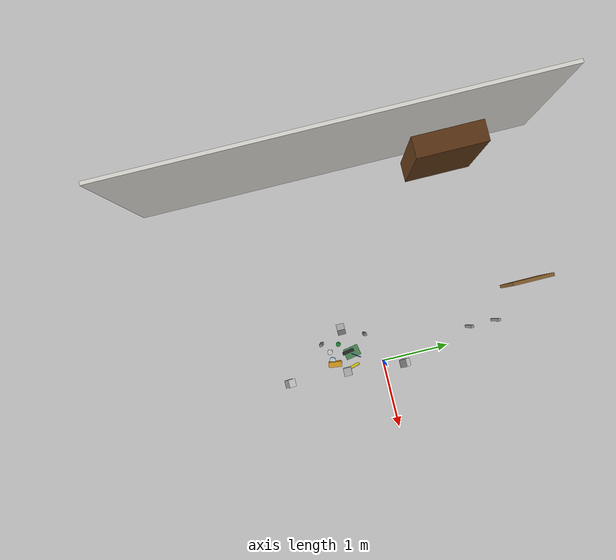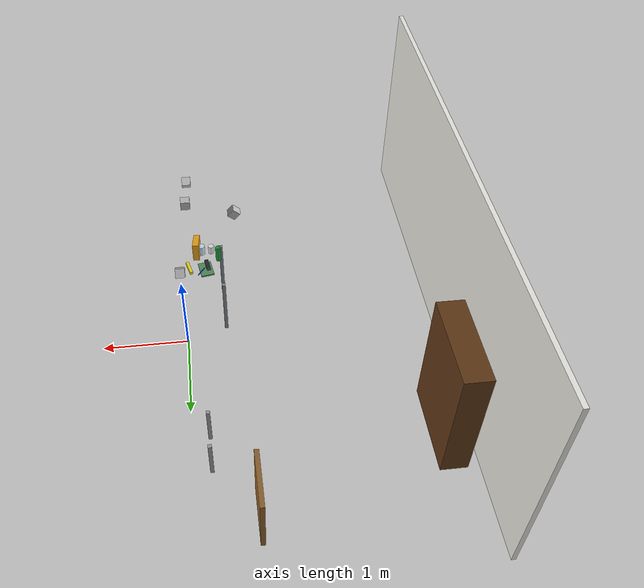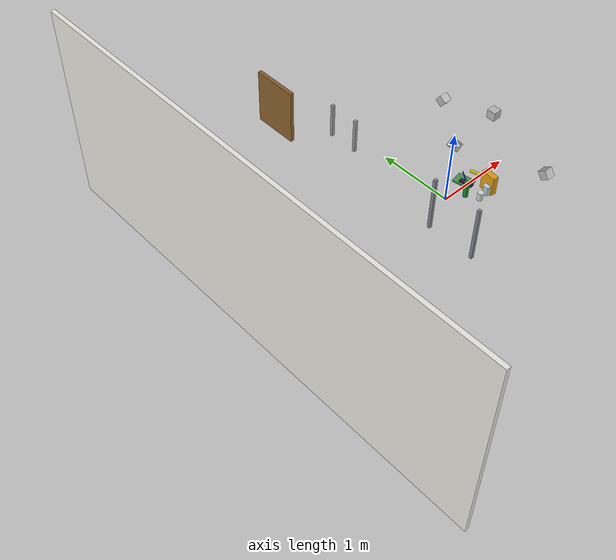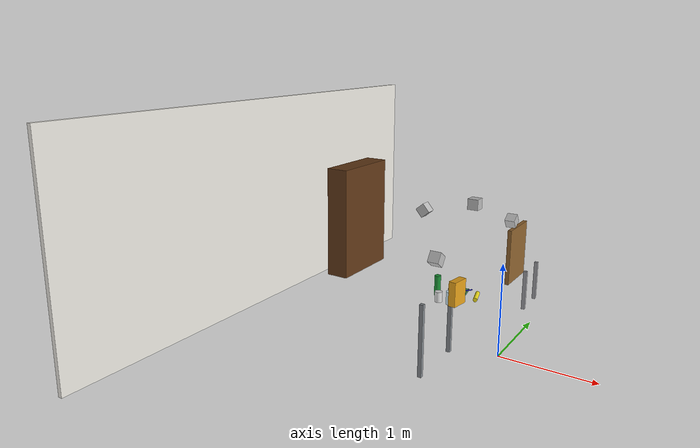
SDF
<sdf version="1.10">
 <world name="bps_room">
  <model name="wall_west">
   <static>true</static>
   <pose>-3 0 1.25 0 0 0</pose>
   <link name="link">
    <collision name="collision">
     <geometry><box><size>0.050000000000000003 6 2.5</size></box></geometry>
    </collision>
    <visual name="visual">
     <geometry><box><size>0.050000000000000003 6 2.5</size></box></geometry>
     <material>
      <ambient>0.930000007 0.920000017 0.889999986 1</ambient>
      <diffuse>0.930000007 0.920000017 0.889999986 1</diffuse>
     </material>
    </visual>
    <inertial>
     <mass>1</mass>
     <inertia><ixx>1</ixx><ixy>0</ixy><ixz>0</ixz><iyy>1</iyy><iyz>0</iyz><izz>1</izz></inertia>
    </inertial>
   </link>
  </model>
  <model name="bookshelf_body">
   <static>true</static>
   <pose>-2.7000000000000002 1.5 0.75 0 0 0</pose>
   <link name="link">
    <collision name="collision"><geometry><box><size>0.29999999999999999 1 1.5</size></box></geometry></collision>
    <visual name="visual">
     <geometry><box><size>0.29999999999999999 1 1.5</size></box></geometry>
     <material>
      <ambient>0.379999995 0.219999999 0.0900000036 1</ambient>
      <diffuse>0.379999995 0.219999999 0.0900000036 1</diffuse>
     </material>
    </visual>
    <inertial>
     <mass>1</mass>
     <inertia><ixx>1</ixx><ixy>0</ixy><ixz>0</ixz><iyy>1</iyy><iyz>0</iyz><izz>1</izz></inertia>
    </inertial>
   </link>
  </model>
  <model name="shelf_1">
   <static>true</static>
   <pose>-2.7000000000000002 1.5 0.40000000000000002 0 0 0</pose>
   <link name="link">
    <collision name="collision">
     <geometry><box><size>0.28000000000000003 0.94999999999999996 0.02</size></box></geometry>
    </collision>
    <visual name="visual">
     <geometry><box><size>0.28000000000000003 0.94999999999999996 0.02</size></box></geometry>
     <material>
      <ambient>0.5 0.319999993 0.140000001 1</ambient>
      <diffuse>0.5 0.319999993 0.140000001 1</diffuse>
     </material>
    </visual>
    <inertial>
     <mass>1</mass>
     <inertia><ixx>1</ixx><ixy>0</ixy><ixz>0</ixz><iyy>1</iyy><iyz>0</iyz><izz>1</izz></inertia>
    </inertial>
   </link>
  </model>
  <model name="shelf_2">
   <static>true</static>
   <pose>-2.7000000000000002 1.5 0.84999999999999998 0 0 0</pose>
   <link name="link">
    <collision name="collision">
     <geometry><box><size>0.28000000000000003 0.94999999999999996 0.02</size></box></geometry>
    </collision>
    <visual name="visual">
     <geometry><box><size>0.28000000000000003 0.94999999999999996 0.02</size></box></geometry>
     <material>
      <ambient>0.5 0.319999993 0.140000001 1</ambient>
      <diffuse>0.5 0.319999993 0.140000001 1</diffuse>
     </material>
    </visual>
    <inertial>
     <mass>1</mass>
     <inertia><ixx>1</ixx><ixy>0</ixy><ixz>0</ixz><iyy>1</iyy><iyz>0</iyz><izz>1</izz></inertia>
    </inertial>
   </link>
  </model>
  <model name="shelf_3">
   <static>true</static>
   <pose>-2.7000000000000002 1.5 1.25 0 0 0</pose>
   <link name="link">
    <collision name="collision">
     <geometry><box><size>0.28000000000000003 0.94999999999999996 0.02</size></box></geometry>
    </collision>
    <visual name="visual">
     <geometry><box><size>0.28000000000000003 0.94999999999999996 0.02</size></box></geometry>
     <material>
      <ambient>0.5 0.319999993 0.140000001 1</ambient>
      <diffuse>0.5 0.319999993 0.140000001 1</diffuse>
     </material>
    </visual>
    <inertial>
     <mass>1</mass>
     <inertia><ixx>1</ixx><ixy>0</ixy><ixz>0</ixz><iyy>1</iyy><iyz>0</iyz><izz>1</izz></inertia>
    </inertial>
   </link>
  </model>
  <model name="books_row1">
   <static>true</static>
   <pose>-2.6200000000000001 1.5 0.62 0 0 0</pose>
   <link name="link">
    <visual name="visual">
     <geometry><box><size>0.040000000000000001 0.80000000000000004 0.20000000000000001</size></box></geometry>
     <material>
      <ambient>0.779999971 0.180000007 0.180000007 1</ambient>
      <diffuse>0.779999971 0.180000007 0.180000007 1</diffuse>
     </material>
    </visual>
    <inertial>
     <mass>1</mass>
     <inertia><ixx>1</ixx><ixy>0</ixy><ixz>0</ixz><iyy>1</iyy><iyz>0</iyz><izz>1</izz></inertia>
    </inertial>
   </link>
  </model>
  <model name="books_row2">
   <static>true</static>
   <pose>-2.6200000000000001 1.5 1.0600000000000001 0 0 0</pose>
   <link name="link">
    <visual name="visual">
     <geometry><box><size>0.040000000000000001 0.69999999999999996 0.17999999999999999</size></box></geometry>
     <material>
      <ambient>0.180000007 0.319999993 0.720000029 1</ambient>
      <diffuse>0.180000007 0.319999993 0.720000029 1</diffuse>
     </material>
    </visual>
    <inertial>
     <mass>1</mass>
     <inertia><ixx>1</ixx><ixy>0</ixy><ixz>0</ixz><iyy>1</iyy><iyz>0</iyz><izz>1</izz></inertia>
    </inertial>
   </link>
  </model>
  <model name="desk_leg_left">
   <static>true</static>
   <pose>-0.65000000000000002 2.2999999999999998 0.375 0 0 0</pose>
   <link name="link">
    <collision name="collision">
     <geometry><box><size>0.050000000000000003 0.59999999999999998 0.75</size></box></geometry>
    </collision>
    <visual name="visual">
     <geometry><box><size>0.050000000000000003 0.59999999999999998 0.75</size></box></geometry>
     <material>
      <ambient>0.550000012 0.379999995 0.180000007 1</ambient>
      <diffuse>0.550000012 0.379999995 0.180000007 1</diffuse>
     </material>
    </visual>
    <inertial>
     <mass>1</mass>
     <inertia><ixx>1</ixx><ixy>0</ixy><ixz>0</ixz><iyy>1</iyy><iyz>0</iyz><izz>1</izz></inertia>
    </inertial>
   </link>
  </model>
  <model name="chair_leg_fl">
   <static>true</static>
   <pose>-0.20000000000000001 1.3500000000000001 0.23999999999999999 0 0 0</pose>
   <link name="link">
    <collision name="collision">
     <geometry><box><size>0.040000000000000001 0.040000000000000001 0.47999999999999998</size></box></geometry>
    </collision>
    <visual name="visual">
     <geometry><box><size>0.040000000000000001 0.040000000000000001 0.47999999999999998</size></box></geometry>
     <material>
      <ambient>0.600000024 0.600000024 0.620000005 1</ambient>
      <diffuse>0.600000024 0.600000024 0.620000005 1</diffuse>
     </material>
    </visual>
    <inertial>
     <mass>1</mass>
     <inertia><ixx>1</ixx><ixy>0</ixy><ixz>0</ixz><iyy>1</iyy><iyz>0</iyz><izz>1</izz></inertia>
    </inertial>
   </link>
  </model>
  <model name="chair_leg_bl">
   <static>true</static>
   <pose>-0.20000000000000001 1.75 0.23999999999999999 0 0 0</pose>
   <link name="link">
    <collision name="collision">
     <geometry><box><size>0.040000000000000001 0.040000000000000001 0.47999999999999998</size></box></geometry>
    </collision>
    <visual name="visual">
     <geometry><box><size>0.040000000000000001 0.040000000000000001 0.47999999999999998</size></box></geometry>
     <material>
      <ambient>0.600000024 0.600000024 0.620000005 1</ambient>
      <diffuse>0.600000024 0.600000024 0.620000005 1</diffuse>
     </material>
    </visual>
    <inertial>
     <mass>1</mass>
     <inertia><ixx>1</ixx><ixy>0</ixy><ixz>0</ixz><iyy>1</iyy><iyz>0</iyz><izz>1</izz></inertia>
    </inertial>
   </link>
  </model>
  <model name="table_leg_fl">
   <static>true</static>
   <pose>-0.46999999999999997 -0.81999999999999995 0.375 0 0 0</pose>
   <link name="link">
    <collision name="collision">
     <geometry><box><size>0.040000000000000001 0.040000000000000001 0.75</size></box></geometry>
    </collision>
    <visual name="visual">
     <geometry><box><size>0.040000000000000001 0.040000000000000001 0.75</size></box></geometry>
     <material>
      <ambient>0.5 0.519999981 0.540000021 1</ambient>
      <diffuse>0.5 0.519999981 0.540000021 1</diffuse>
     </material>
    </visual>
    <inertial>
     <mass>1</mass>
     <inertia><ixx>1</ixx><ixy>0</ixy><ixz>0</ixz><iyy>1</iyy><iyz>0</iyz><izz>1</izz></inertia>
    </inertial>
   </link>
  </model>
  <model name="table_leg_bl">
   <static>true</static>
   <pose>-0.46999999999999997 -0.17999999999999999 0.375 0 0 0</pose>
   <link name="link">
    <collision name="collision">
     <geometry><box><size>0.040000000000000001 0.040000000000000001 0.75</size></box></geometry>
    </collision>
    <visual name="visual">
     <geometry><box><size>0.040000000000000001 0.040000000000000001 0.75</size></box></geometry>
     <material>
      <ambient>0.5 0.519999981 0.540000021 1</ambient>
      <diffuse>0.5 0.519999981 0.540000021 1</diffuse>
     </material>
    </visual>
    <inertial>
     <mass>1</mass>
     <inertia><ixx>1</ixx><ixy>0</ixy><ixz>0</ixz><iyy>1</iyy><iyz>0</iyz><izz>1</izz></inertia>
    </inertial>
   </link>
  </model>
  <model name="obj_bottle">
   <static>true</static>
   <pose>-0.43374082446098328 -0.57698202133178711 0.87000000476837158 0 0 0</pose>
   <link name="link">
    <collision name="collision">
     <geometry>
      <cylinder><radius>0.029999999999999999</radius><length>0.20000000000000001</length></cylinder>
     </geometry>
    </collision>
    <visual name="visual">
     <geometry>
      <cylinder><radius>0.029999999999999999</radius><length>0.20000000000000001</length></cylinder>
     </geometry>
     <material>
      <ambient>0.100000001 0.550000012 0.200000003 1</ambient>
      <diffuse>0.100000001 0.550000012 0.200000003 1</diffuse>
      <specular>0.400000006 0.400000006 0.400000006 1</specular>
     </material>
     <plugin name="gz::sim::systems::Label" filename="gz-sim-label-system"><label>1</label></plugin>
    </visual>
    <inertial>
     <mass>1</mass>
     <inertia><ixx>1</ixx><ixy>0</ixy><ixz>0</ixz><iyy>1</iyy><iyz>0</iyz><izz>1</izz></inertia>
    </inertial>
   </link>
  </model>
  <model name="obj_mug">
   <static>true</static>
   <pose>-0.35499999999999998 -0.71499999999999997 0.81999999999999995 0 0 0</pose>
   <link name="link">
    <collision name="collision">
     <geometry>
      <cylinder><radius>0.035000000000000003</radius><length>0.10000000000000001</length></cylinder>
     </geometry>
    </collision>
    <visual name="visual">
     <geometry>
      <cylinder><radius>0.035000000000000003</radius><length>0.10000000000000001</length></cylinder>
     </geometry>
     <material>
      <ambient>0.850000024 0.850000024 0.850000024 1</ambient>
      <diffuse>0.850000024 0.850000024 0.850000024 1</diffuse>
      <specular>0.300000012 0.300000012 0.300000012 1</specular>
     </material>
     <plugin name="gz::sim::systems::Label" filename="gz-sim-label-system"><label>2</label></plugin>
    </visual>
    <inertial>
     <mass>1</mass>
     <inertia><ixx>1</ixx><ixy>0</ixy><ixz>0</ixz><iyy>1</iyy><iyz>0</iyz><izz>1</izz></inertia>
    </inertial>
   </link>
  </model>
  <model name="obj_jar">
   <static>true</static>
   <pose>-0.23999999999999999 -0.70499999999999996 0.82999999999999996 0 0 0</pose>
   <link name="link">
    <collision name="collision">
     <geometry><cylinder><radius>0.040000000000000001</radius><length>0.12</length></cylinder></geometry>
    </collision>
    <visual name="visual">
     <geometry><cylinder><radius>0.040000000000000001</radius><length>0.12</length></cylinder></geometry>
     <material>
      <ambient>0.75 0.850000024 0.899999976 1</ambient>
      <diffuse>0.75 0.850000024 0.899999976 1</diffuse>
      <specular>0.600000024 0.600000024 0.600000024 1</specular>
     </material>
     <plugin name="gz::sim::systems::Label" filename="gz-sim-label-system"><label>3</label></plugin>
    </visual>
    <inertial>
     <mass>1</mass>
     <inertia><ixx>1</ixx><ixy>0</ixy><ixz>0</ixz><iyy>1</iyy><iyz>0</iyz><izz>1</izz></inertia>
    </inertial>
   </link>
  </model>
  <model name="obj_cereal_box">
   <static>true</static>
   <pose>-0.185 -0.68000000000000005 0.89000000000000001 0 0 -0.13959999999999995</pose>
   <link name="link">
    <collision name="collision">
     <geometry><box><size>0.070000000000000007 0.17999999999999999 0.23999999999999999</size></box></geometry>
    </collision>
    <visual name="visual">
     <geometry><box><size>0.070000000000000007 0.17999999999999999 0.23999999999999999</size></box></geometry>
     <material>
      <ambient>0.879999995 0.620000005 0.100000001 1</ambient>
      <diffuse>0.879999995 0.620000005 0.100000001 1</diffuse>
      <specular>0.200000003 0.200000003 0.200000003 1</specular>
     </material>
     <plugin name="gz::sim::systems::Label" filename="gz-sim-label-system"><label>4</label></plugin>
    </visual>
    <inertial>
     <mass>1</mass>
     <inertia><ixx>1</ixx><ixy>0</ixy><ixz>0</ixz><iyy>1</iyy><iyz>0</iyz><izz>1</izz></inertia>
    </inertial>
   </link>
  </model>
  <model name="obj_banana">
   <static>true</static>
   <pose>-0.086235798895359039 -0.44983398914337158 0.79000097513198853 1.5707999823039842 -3.0145442531104294e-09 0.26180000909009621</pose>
   <link name="link">
    <collision name="collision">
     <geometry><cylinder><radius>0.02</radius><length>0.17999999999999999</length></cylinder></geometry>
    </collision>
    <visual name="visual">
     <geometry><cylinder><radius>0.02</radius><length>0.17999999999999999</length></cylinder></geometry>
     <material>
      <ambient>0.920000017 0.850000024 0.100000001 1</ambient>
      <diffuse>0.920000017 0.850000024 0.100000001 1</diffuse>
      <specular>0.300000012 0.300000012 0.300000012 1</specular>
     </material>
     <plugin name="gz::sim::systems::Label" filename="gz-sim-label-system"><label>8</label></plugin>
    </visual>
    <inertial>
     <mass>1</mass>
     <inertia><ixx>1</ixx><ixy>0</ixy><ixz>0</ixz><iyy>1</iyy><iyz>0</iyz><izz>1</izz></inertia>
    </inertial>
   </link>
  </model>
  <model name="obj_notebook">
   <static>true</static>
   <pose>-0.28000000000000003 -0.41999999999999998 0.78000000000000003 0 0 0.17449999999999999</pose>
   <link name="link">
    <collision name="collision">
     <geometry><box><size>0.14999999999999999 0.20999999999999999 0.02</size></box></geometry>
    </collision>
    <visual name="visual">
     <geometry><box><size>0.14999999999999999 0.20999999999999999 0.02</size></box></geometry>
     <material>
      <ambient>0.300000012 0.550000012 0.349999994 1</ambient>
      <diffuse>0.300000012 0.550000012 0.349999994 1</diffuse>
      <specular>0.200000003 0.200000003 0.200000003 1</specular>
     </material>
     <plugin name="gz::sim::systems::Label" filename="gz-sim-label-system"><label>9</label></plugin>
    </visual>
    <inertial>
     <mass>1</mass>
     <inertia><ixx>1</ixx><ixy>0</ixy><ixz>0</ixz><iyy>1</iyy><iyz>0</iyz><izz>1</izz></inertia>
    </inertial>
   </link>
  </model>
  <model name="obj_remote">
   <static>true</static>
   <pose>-0.29999999999999999 -0.46999999999999997 0.80000000000000004 0 0 0.17449999999999999</pose>
   <link name="link">
    <collision name="collision">
     <geometry><box><size>0.044999999999999998 0.16 0.02</size></box></geometry>
    </collision>
    <visual name="visual">
     <geometry><box><size>0.044999999999999998 0.16 0.02</size></box></geometry>
     <material>
      <ambient>0.150000006 0.150000006 0.159999996 1</ambient>
      <diffuse>0.150000006 0.150000006 0.159999996 1</diffuse>
      <specular>0.300000012 0.300000012 0.300000012 1</specular>
     </material>
     <plugin name="gz::sim::systems::Label" filename="gz-sim-label-system"><label>10</label></plugin>
    </visual>
    <inertial>
     <mass>1</mass>
     <inertia><ixx>1</ixx><ixy>0</ixy><ixz>0</ixz><iyy>1</iyy><iyz>0</iyz><izz>1</izz></inertia>
    </inertial>
   </link>
  </model>
  <model name="obj_pen">
   <static>true</static>
   <pose>-0.22500000000000001 -0.375 0.79400000000000004 0 0 -0.61090000000000044</pose>
   <link name="link">
    <collision name="collision">
     <geometry><box><size>0.0080000000000000002 0.14000000000000001 0.0080000000000000002</size></box></geometry>
    </collision>
    <visual name="visual">
     <geometry><box><size>0.0080000000000000002 0.14000000000000001 0.0080000000000000002</size></box></geometry>
     <material>
      <ambient>0.100000001 0.100000001 0.75 1</ambient>
      <diffuse>0.100000001 0.100000001 0.75 1</diffuse>
      <specular>0.5 0.5 0.5 1</specular>
     </material>
     <plugin name="gz::sim::systems::Label" filename="gz-sim-label-system"><label>11</label></plugin>
    </visual>
    <inertial>
     <mass>1</mass>
     <inertia><ixx>1</ixx><ixy>0</ixy><ixz>0</ixz><iyy>1</iyy><iyz>0</iyz><izz>1</izz></inertia>
    </inertial>
   </link>
  </model>
  <model name="depth_camera">
   <static>true</static>
   <pose>-0.16386400163173676 -0.58311200141906738 1.7646600008010864 3.1415899979989477 1.57079000476762 3.1415899979989477</pose>
   <link name="link">
    <pose>0.050000000000000003 0.050000000000000003 0.050000000000000003 0 0 0</pose>
    <inertial>
     <mass>0.10000000000000001</mass>
     <inertia>
      <ixx>0.00016666700000000001</ixx>
      <iyy>0.00016666700000000001</iyy>
      <izz>0.00016666700000000001</izz>
      <ixy>0</ixy>
      <ixz>0</ixz>
      <iyz>0</iyz>
     </inertia>
    </inertial>
    <collision name="collision">
     <geometry><box><size>0.10000000000000001 0.10000000000000001 0.10000000000000001</size></box></geometry>
    </collision>
    <visual name="visual">
     <geometry><box><size>0.10000000000000001 0.10000000000000001 0.10000000000000001</size></box></geometry>
    </visual>
    <sensor name="depth_camera1" type="depth_camera">
     <topic>depth_camera</topic>
     <update_rate>10</update_rate>
     <enable_metrics>false</enable_metrics>
     <camera>
      <horizontal_fov>1.2</horizontal_fov>
      <image>
       <width>640</width>
       <height>480</height>
       <format>R_FLOAT32</format>
       <anti_aliasing>4</anti_aliasing>
      </image>
      <camera_info_topic>__default__</camera_info_topic>
      <triggered>false</triggered>
      <clip><near>0.10000000000000001</near><far>2</far></clip>
      <save enabled="false"><path>__default__</path></save>
      <visibility_mask>4294967295</visibility_mask>
      <noise><type>none</type><mean>0</mean><stddev>0</stddev></noise>
      <distortion><k1>0</k1><k2>0</k2><k3>0</k3><p1>0</p1><p2>0</p2><center>0.5 0.5</center></distortion>
      <lens>
       <type>stereographic</type>
       <scale_to_hfov>true</scale_to_hfov>
       <cutoff_angle>1.5707963267948966</cutoff_angle>
       <env_texture_size>256</env_texture_size>
      </lens>
     </camera>
    </sensor>
    <sensor name="rgb_camera" type="camera">
     <topic>rgb_camera</topic>
     <update_rate>10</update_rate>
     <enable_metrics>false</enable_metrics>
     <camera>
      <horizontal_fov>1.2</horizontal_fov>
      <image><width>640</width><height>480</height><format>RGB_INT8</format><anti_aliasing>4</anti_aliasing></image>
      <camera_info_topic>__default__</camera_info_topic>
      <triggered>false</triggered>
      <clip><near>0.10000000000000001</near><far>2</far></clip>
      <save enabled="false"><path>__default__</path></save>
      <visibility_mask>4294967295</visibility_mask>
      <noise><type>none</type><mean>0</mean><stddev>0</stddev></noise>
      <distortion><k1>0</k1><k2>0</k2><k3>0</k3><p1>0</p1><p2>0</p2><center>0.5 0.5</center></distortion>
      <lens>
       <type>stereographic</type>
       <scale_to_hfov>true</scale_to_hfov>
       <cutoff_angle>1.5707963267948966</cutoff_angle>
       <env_texture_size>256</env_texture_size>
      </lens>
     </camera>
    </sensor>
    <sensor name="semantic_camera" type="segmentation_camera">
     <topic>semantic_camera</topic>
     <update_rate>10</update_rate>
     <enable_metrics>false</enable_metrics>
     <camera>
      <horizontal_fov>1.2</horizontal_fov>
      <image><width>640</width><height>480</height></image>
      <clip><near>0.1</near><far>100</far></clip>
      <segmentation_type>semantic</segmentation_type>
     </camera>
    </sensor>
   </link>
  </model>
  <model name="depth_camera_v3">
   <static>true</static>
   <pose>-0.06749853895977134 0.27856979363429435 1.3864514975948186 -0.0 0.6108652381980154 -1.5707963267948968</pose>
   <link name="link">
    <pose>0.050000000000000003 0.050000000000000003 0.050000000000000003 0 0 0</pose>
    <inertial>
     <mass>0.10000000000000001</mass>
     <inertia>
      <ixx>0.00016666700000000001</ixx>
      <iyy>0.00016666700000000001</iyy>
      <izz>0.00016666700000000001</izz>
      <ixy>0</ixy>
      <ixz>0</ixz>
      <iyz>0</iyz>
     </inertia>
    </inertial>
    <collision name="collision">
     <geometry><box><size>0.10000000000000001 0.10000000000000001 0.10000000000000001</size></box></geometry>
    </collision>
    <visual name="visual">
     <geometry><box><size>0.10000000000000001 0.10000000000000001 0.10000000000000001</size></box></geometry>
    </visual>
    <sensor name="depth_camera3" type="depth_camera">
     <topic>depth_camera_v3</topic>
     <update_rate>10</update_rate>
     <enable_metrics>false</enable_metrics>
     <camera>
      <horizontal_fov>1.2</horizontal_fov>
      <image>
       <width>640</width>
       <height>480</height>
       <format>R_FLOAT32</format>
       <anti_aliasing>4</anti_aliasing>
      </image>
      <camera_info_topic>__default__</camera_info_topic>
      <triggered>false</triggered>
      <clip><near>0.10000000000000001</near><far>2</far></clip>
      <save enabled="false"><path>__default__</path></save>
      <visibility_mask>4294967295</visibility_mask>
      <noise><type>none</type><mean>0</mean><stddev>0</stddev></noise>
      <distortion><k1>0</k1><k2>0</k2><k3>0</k3><p1>0</p1><p2>0</p2><center>0.5 0.5</center></distortion>
      <lens>
       <type>stereographic</type>
       <scale_to_hfov>true</scale_to_hfov>
       <cutoff_angle>1.5707963267948966</cutoff_angle>
       <env_texture_size>256</env_texture_size>
      </lens>
     </camera>
    </sensor>
    <sensor name="rgb_camera3" type="camera">
     <topic>rgb_camera_v3</topic>
     <update_rate>10</update_rate>
     <enable_metrics>false</enable_metrics>
     <camera>
      <horizontal_fov>1.2</horizontal_fov>
      <image><width>640</width><height>480</height><format>RGB_INT8</format><anti_aliasing>4</anti_aliasing></image>
      <camera_info_topic>__default__</camera_info_topic>
      <triggered>false</triggered>
      <clip><near>0.10000000000000001</near><far>2</far></clip>
      <save enabled="false"><path>__default__</path></save>
      <visibility_mask>4294967295</visibility_mask>
      <noise><type>none</type><mean>0</mean><stddev>0</stddev></noise>
      <distortion><k1>0</k1><k2>0</k2><k3>0</k3><p1>0</p1><p2>0</p2><center>0.5 0.5</center></distortion>
      <lens>
       <type>stereographic</type>
       <scale_to_hfov>true</scale_to_hfov>
       <cutoff_angle>1.5707963267948966</cutoff_angle>
       <env_texture_size>256</env_texture_size>
      </lens>
     </camera>
    </sensor>
    <sensor name="semantic_camera3" type="segmentation_camera">
     <topic>semantic_camera_v3</topic>
     <update_rate>10</update_rate>
     <enable_metrics>false</enable_metrics>
     <camera>
      <horizontal_fov>1.2</horizontal_fov>
      <image><width>640</width><height>480</height></image>
      <clip><near>0.1</near><far>100</far></clip>
      <segmentation_type>semantic</segmentation_type>
     </camera>
    </sensor>
   </link>
  </model>
  <model name="depth_camera_v4">
   <static>true</static>
   <pose>-0.7102861486463108 -0.5405822506546973 1.5789195043627506 -0.0 0.8726646259971649 -1.7272004125383903e-16</pose>
   <link name="link">
    <pose>0.050000000000000003 0.050000000000000003 0.050000000000000003 0 0 0</pose>
    <inertial>
     <mass>0.10000000000000001</mass>
     <inertia>
      <ixx>0.00016666700000000001</ixx>
      <iyy>0.00016666700000000001</iyy>
      <izz>0.00016666700000000001</izz>
      <ixy>0</ixy>
      <ixz>0</ixz>
      <iyz>0</iyz>
     </inertia>
    </inertial>
    <collision name="collision">
     <geometry><box><size>0.10000000000000001 0.10000000000000001 0.10000000000000001</size></box></geometry>
    </collision>
    <visual name="visual">
     <geometry><box><size>0.10000000000000001 0.10000000000000001 0.10000000000000001</size></box></geometry>
    </visual>
    <sensor name="depth_camera4" type="depth_camera">
     <topic>depth_camera_v4</topic>
     <update_rate>10</update_rate>
     <enable_metrics>false</enable_metrics>
     <camera>
      <horizontal_fov>1.2</horizontal_fov>
      <image>
       <width>640</width>
       <height>480</height>
       <format>R_FLOAT32</format>
       <anti_aliasing>4</anti_aliasing>
      </image>
      <camera_info_topic>__default__</camera_info_topic>
      <triggered>false</triggered>
      <clip><near>0.10000000000000001</near><far>2</far></clip>
      <save enabled="false"><path>__default__</path></save>
      <visibility_mask>4294967295</visibility_mask>
      <noise><type>none</type><mean>0</mean><stddev>0</stddev></noise>
      <distortion><k1>0</k1><k2>0</k2><k3>0</k3><p1>0</p1><p2>0</p2><center>0.5 0.5</center></distortion>
      <lens>
       <type>stereographic</type>
       <scale_to_hfov>true</scale_to_hfov>
       <cutoff_angle>1.5707963267948966</cutoff_angle>
       <env_texture_size>256</env_texture_size>
      </lens>
     </camera>
    </sensor>
    <sensor name="rgb_camera4" type="camera">
     <topic>rgb_camera_v4</topic>
     <update_rate>10</update_rate>
     <enable_metrics>false</enable_metrics>
     <camera>
      <horizontal_fov>1.2</horizontal_fov>
      <image><width>640</width><height>480</height><format>RGB_INT8</format><anti_aliasing>4</anti_aliasing></image>
      <camera_info_topic>__default__</camera_info_topic>
      <triggered>false</triggered>
      <clip><near>0.10000000000000001</near><far>2</far></clip>
      <save enabled="false"><path>__default__</path></save>
      <visibility_mask>4294967295</visibility_mask>
      <noise><type>none</type><mean>0</mean><stddev>0</stddev></noise>
      <distortion><k1>0</k1><k2>0</k2><k3>0</k3><p1>0</p1><p2>0</p2><center>0.5 0.5</center></distortion>
      <lens>
       <type>stereographic</type>
       <scale_to_hfov>true</scale_to_hfov>
       <cutoff_angle>1.5707963267948966</cutoff_angle>
       <env_texture_size>256</env_texture_size>
      </lens>
     </camera>
    </sensor>
    <sensor name="semantic_camera4" type="segmentation_camera">
     <topic>semantic_camera_v4</topic>
     <update_rate>10</update_rate>
     <enable_metrics>false</enable_metrics>
     <camera>
      <horizontal_fov>1.2</horizontal_fov>
      <image><width>640</width><height>480</height></image>
      <clip><near>0.1</near><far>100</far></clip>
      <segmentation_type>semantic</segmentation_type>
     </camera>
    </sensor>
   </link>
  </model>
  <model name="depth_camera_v5">
   <static>true</static>
   <pose>-0.06749853895977155 -1.3597342949436892 1.3864514975948186 -0.0 0.6108652381980154 1.5707963267948963</pose>
   <link name="link">
    <pose>0.050000000000000003 0.050000000000000003 0.050000000000000003 0 0 0</pose>
    <inertial>
     <mass>0.10000000000000001</mass>
     <inertia>
      <ixx>0.00016666700000000001</ixx>
      <iyy>0.00016666700000000001</iyy>
      <izz>0.00016666700000000001</izz>
      <ixy>0</ixy>
      <ixz>0</ixz>
      <iyz>0</iyz>
     </inertia>
    </inertial>
    <collision name="collision">
     <geometry><box><size>0.10000000000000001 0.10000000000000001 0.10000000000000001</size></box></geometry>
    </collision>
    <visual name="visual">
     <geometry><box><size>0.10000000000000001 0.10000000000000001 0.10000000000000001</size></box></geometry>
    </visual>
    <sensor name="depth_camera5" type="depth_camera">
     <topic>depth_camera_v5</topic>
     <update_rate>10</update_rate>
     <enable_metrics>false</enable_metrics>
     <camera>
      <horizontal_fov>1.2</horizontal_fov>
      <image>
       <width>640</width>
       <height>480</height>
       <format>R_FLOAT32</format>
       <anti_aliasing>4</anti_aliasing>
      </image>
      <camera_info_topic>__default__</camera_info_topic>
      <triggered>false</triggered>
      <clip><near>0.10000000000000001</near><far>2</far></clip>
      <save enabled="false"><path>__default__</path></save>
      <visibility_mask>4294967295</visibility_mask>
      <noise><type>none</type><mean>0</mean><stddev>0</stddev></noise>
      <distortion><k1>0</k1><k2>0</k2><k3>0</k3><p1>0</p1><p2>0</p2><center>0.5 0.5</center></distortion>
      <lens>
       <type>stereographic</type>
       <scale_to_hfov>true</scale_to_hfov>
       <cutoff_angle>1.5707963267948966</cutoff_angle>
       <env_texture_size>256</env_texture_size>
      </lens>
     </camera>
    </sensor>
    <sensor name="rgb_camera5" type="camera">
     <topic>rgb_camera_v5</topic>
     <update_rate>10</update_rate>
     <enable_metrics>false</enable_metrics>
     <camera>
      <horizontal_fov>1.2</horizontal_fov>
      <image><width>640</width><height>480</height><format>RGB_INT8</format><anti_aliasing>4</anti_aliasing></image>
      <camera_info_topic>__default__</camera_info_topic>
      <triggered>false</triggered>
      <clip><near>0.10000000000000001</near><far>2</far></clip>
      <save enabled="false"><path>__default__</path></save>
      <visibility_mask>4294967295</visibility_mask>
      <noise><type>none</type><mean>0</mean><stddev>0</stddev></noise>
      <distortion><k1>0</k1><k2>0</k2><k3>0</k3><p1>0</p1><p2>0</p2><center>0.5 0.5</center></distortion>
      <lens>
       <type>stereographic</type>
       <scale_to_hfov>true</scale_to_hfov>
       <cutoff_angle>1.5707963267948966</cutoff_angle>
       <env_texture_size>256</env_texture_size>
      </lens>
     </camera>
    </sensor>
    <sensor name="semantic_camera5" type="segmentation_camera">
     <topic>semantic_camera_v5</topic>
     <update_rate>10</update_rate>
     <enable_metrics>false</enable_metrics>
     <camera>
      <horizontal_fov>1.2</horizontal_fov>
      <image><width>640</width><height>480</height></image>
      <clip><near>0.1</near><far>100</far></clip>
      <segmentation_type>semantic</segmentation_type>
     </camera>
    </sensor>
   </link>
  </model>
 </world>
</sdf>
